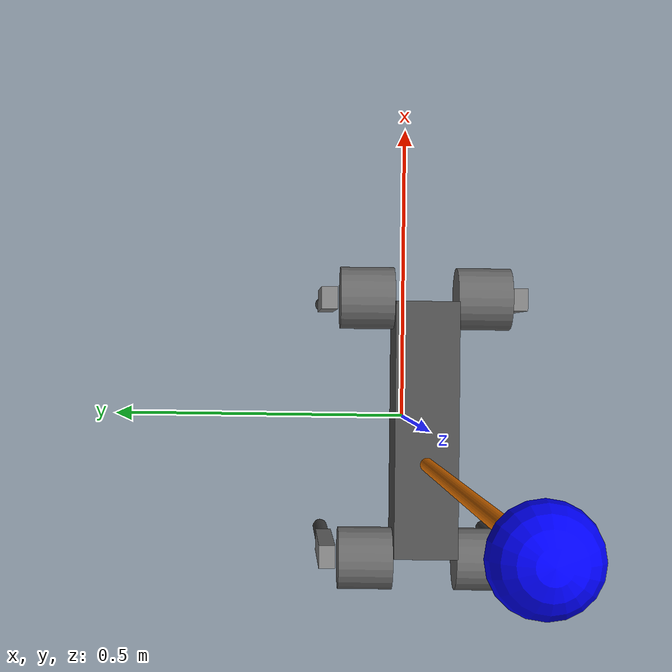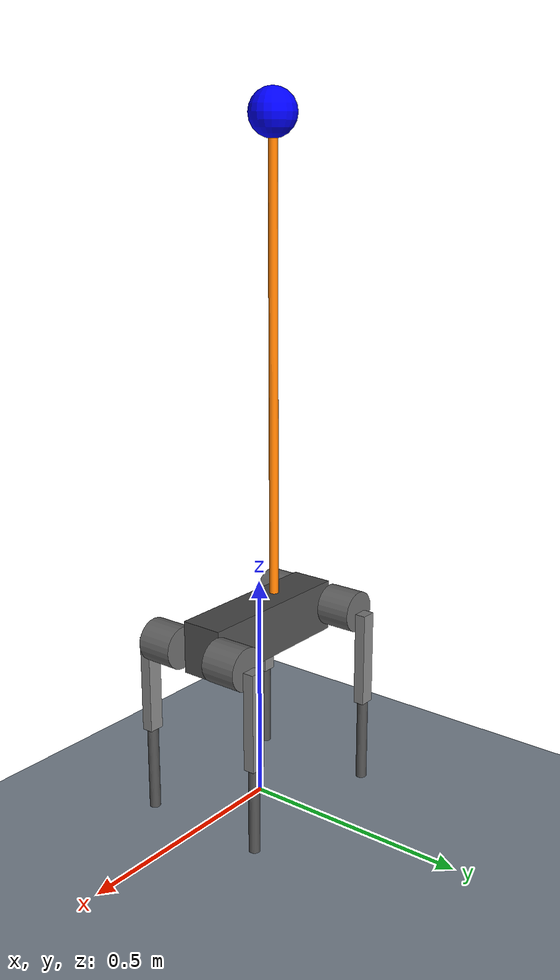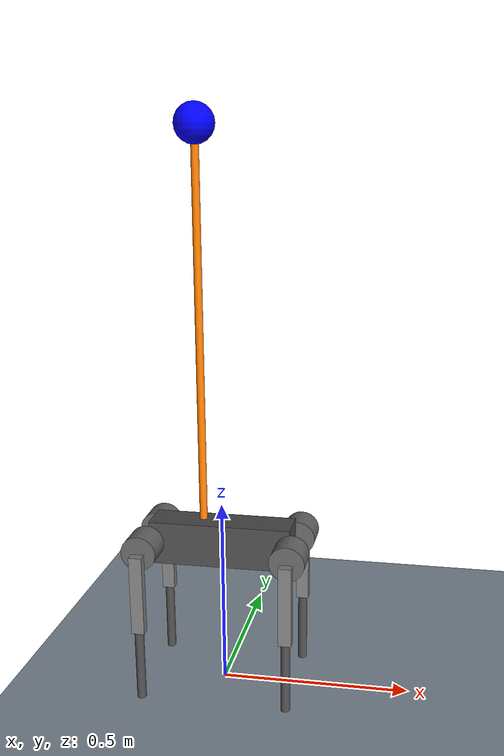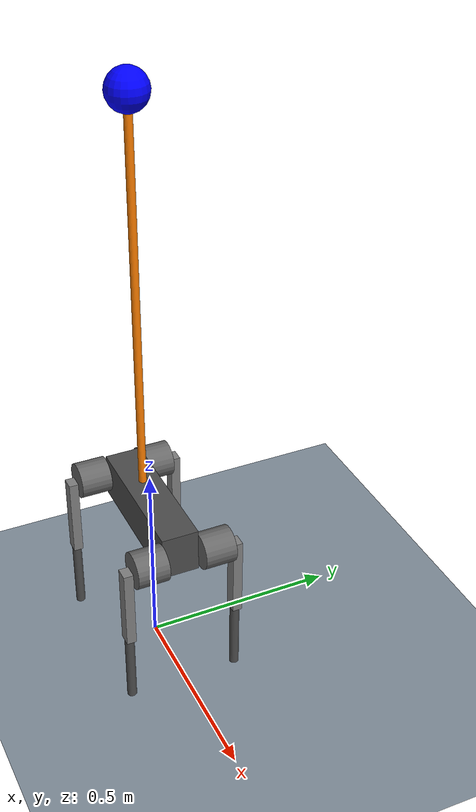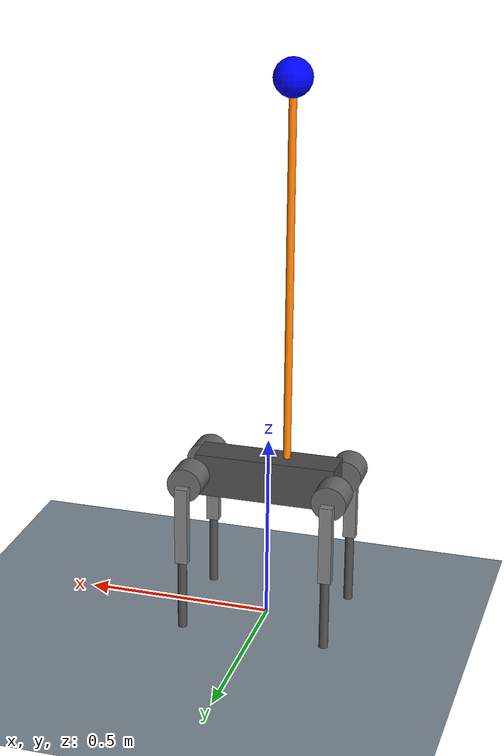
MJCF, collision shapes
<mujoco model="go2_pendulum">
  <compiler angle="radian" autolimits="true" meshdir="meshes"/>

  <option timestep="0.005" iterations="4" solver="Newton" gravity="0 0 -9.81"/>

  <default>
    <geom condim="3" friction="1.0 0.005 0.0001" rgba="0.5 0.5 0.5 1"/>
    <joint damping="0" frictionloss="0"/>
  </default>

  <asset>
    <texture type="2d" name="grid_tex" builtin="checker" width="512" height="512"
             rgb1="0.2 0.3 0.4" rgb2="0.8 0.8 0.8"/>
    <material name="grid_mat" texture="grid_tex" texrepeat="8 8" reflectance="0.2"/>

    <mesh name="base_mesh"         file="base.obj"/>
    <mesh name="hip_mesh"          file="hip.obj"/>
    <mesh name="thigh_mesh"        file="thigh.obj"/>
    <mesh name="thigh_mirror_mesh" file="thigh_mirror.obj"/>
    <mesh name="calf_mesh"         file="calf.obj"/>
    <mesh name="calf_mirror_mesh"  file="calf_mirror.obj"/>
    <mesh name="foot_mesh"         file="foot.obj"/>
  </asset>

  <worldbody>
    <light diffuse="0.8 0.8 0.8" pos="0 0 3" dir="0 0 -1"/>
    <geom name="floor" type="plane" size="50 50 0.1" material="grid_mat"/>

    <body name="base" pos="0 0 0.4">
      <freejoint name="base_freejoint"/>
      <inertial pos="0.021112 0 -0.005366" mass="6.921"
                fullinertia="0.02448 0.098077 0.107 0.00012166 0.0014849 -3.12e-05"/>
      <geom type="box" size="0.1881 0.04675 0.057" contype="1" conaffinity="1" group="1" rgba="0.3 0.3 0.3 1"/>
      <geom type="mesh" mesh="base_mesh" contype="0" conaffinity="0" group="0"/>

      <!-- FL leg -->
      <body name="FL_hip" pos="0.1934 0.0465 0">
        <inertial pos="-0.0054 0.00194 -0.000105" mass="0.678"
                  fullinertia="0.00048 0.000884 0.000596 -3.01e-06 1.11e-06 -1.42e-06"/>
        <joint name="FL_hip_joint" axis="1 0 0" range="-1.0472 1.0472"/>
        <geom type="cylinder" fromto="0 0 0 0 0.08 0" size="0.046" contype="1" conaffinity="1" group="1" rgba="0.4 0.4 0.4 1"/>
        <geom type="mesh" mesh="hip_mesh" contype="0" conaffinity="0" group="0"/>
        <body name="FL_thigh" pos="0 0.0955 0">
          <inertial pos="-0.00374 -0.0223 -0.0327" mass="1.152"
                    fullinertia="0.00584 0.0058 0.00103 8.72e-05 -0.000289 0.000808"/>
          <joint name="FL_thigh_joint" axis="0 1 0" range="-1.5708 3.4907"/>
          <geom type="box" size="0.017 0.01225 0.1065" pos="0 0 -0.1065" contype="1" conaffinity="1" group="1" rgba="0.5 0.5 0.5 1"/>
          <geom type="mesh" mesh="thigh_mesh" contype="0" conaffinity="0" group="0"/>
          <body name="FL_calf" pos="0 0 -0.213">
            <inertial pos="0.00548 -0.000975 -0.115" mass="0.154"
                      fullinertia="0.00108 0.0011 3.29e-05 3.4e-07 1.72e-05 8.28e-06"/>
            <joint name="FL_calf_joint" axis="0 1 0" range="-2.7227 -0.83776"/>
            <geom type="cylinder" fromto="0 0 0 0 0 -0.213" size="0.012" contype="1" conaffinity="1" group="1" rgba="0.3 0.3 0.3 1"/>
            <geom type="mesh" mesh="calf_mesh" contype="0" conaffinity="0" group="0"/>
            <body name="FL_foot" pos="0 0 -0.213">
              <inertial pos="0 0 0" mass="0.04"
                        fullinertia="9.6e-06 9.6e-06 9.6e-06 0 0 0"/>
              <geom type="sphere" size="0.022" contype="1" conaffinity="1" group="1" rgba="0.1 0.1 0.1 1"/>
              <geom type="mesh" mesh="foot_mesh" contype="0" conaffinity="0" group="0"/>
            </body>
          </body>
        </body>
      </body>

      <!-- FR leg -->
      <body name="FR_hip" pos="0.1934 -0.0465 0">
        <inertial pos="-0.0054 -0.00194 -0.000105" mass="0.678"
                  fullinertia="0.00048 0.000884 0.000596 3.01e-06 1.11e-06 1.42e-06"/>
        <joint name="FR_hip_joint" axis="1 0 0" range="-1.0472 1.0472"/>
        <geom type="cylinder" fromto="0 0 0 0 -0.08 0" size="0.046" contype="1" conaffinity="1" group="1" rgba="0.4 0.4 0.4 1"/>
        <geom type="mesh" mesh="hip_mesh" euler="3.1415 0 0" contype="0" conaffinity="0" group="0"/>
        <body name="FR_thigh" pos="0 -0.0955 0">
          <inertial pos="-0.00374 0.0223 -0.0327" mass="1.152"
                    fullinertia="0.00584 0.0058 0.00103 -8.72e-05 -0.000289 -0.000808"/>
          <joint name="FR_thigh_joint" axis="0 1 0" range="-1.5708 3.4907"/>
          <geom type="box" size="0.017 0.01225 0.1065" pos="0 0 -0.1065" contype="1" conaffinity="1" group="1" rgba="0.5 0.5 0.5 1"/>
          <geom type="mesh" mesh="thigh_mirror_mesh" contype="0" conaffinity="0" group="0"/>
          <body name="FR_calf" pos="0 0 -0.213">
            <inertial pos="0.00548 0.000975 -0.115" mass="0.154"
                      fullinertia="0.00108 0.0011 3.29e-05 -3.4e-07 1.72e-05 -8.28e-06"/>
            <joint name="FR_calf_joint" axis="0 1 0" range="-2.7227 -0.83776"/>
            <geom type="cylinder" fromto="0 0 0 0 0 -0.213" size="0.012" contype="1" conaffinity="1" group="1" rgba="0.3 0.3 0.3 1"/>
            <geom type="mesh" mesh="calf_mirror_mesh" contype="0" conaffinity="0" group="0"/>
            <body name="FR_foot" pos="0 0 -0.213">
              <inertial pos="0 0 0" mass="0.04"
                        fullinertia="9.6e-06 9.6e-06 9.6e-06 0 0 0"/>
              <geom type="sphere" size="0.022" contype="1" conaffinity="1" group="1" rgba="0.1 0.1 0.1 1"/>
              <geom type="mesh" mesh="foot_mesh" contype="0" conaffinity="0" group="0"/>
            </body>
          </body>
        </body>
      </body>

      <!-- RL leg -->
      <body name="RL_hip" pos="-0.1934 0.0465 0">
        <inertial pos="0.0054 0.00194 -0.000105" mass="0.678"
                  fullinertia="0.00048 0.000884 0.000596 3.01e-06 -1.11e-06 -1.42e-06"/>
        <joint name="RL_hip_joint" axis="1 0 0" range="-1.0472 1.0472"/>
        <geom type="cylinder" fromto="0 0 0 0 0.08 0" size="0.046" contype="1" conaffinity="1" group="1" rgba="0.4 0.4 0.4 1"/>
        <geom type="mesh" mesh="hip_mesh" euler="0 3.1415 0" contype="0" conaffinity="0" group="0"/>
        <body name="RL_thigh" pos="0 0.0955 0">
          <inertial pos="-0.00374 -0.0223 -0.0327" mass="1.152"
                    fullinertia="0.00584 0.0058 0.00103 8.72e-05 -0.000289 0.000808"/>
          <joint name="RL_thigh_joint" axis="0 1 0" range="-0.5236 4.5379"/>
          <geom type="box" size="0.017 0.01225 0.1065" pos="0 0 -0.1065" contype="1" conaffinity="1" group="1" rgba="0.5 0.5 0.5 1"/>
          <geom type="mesh" mesh="thigh_mesh" contype="0" conaffinity="0" group="0"/>
          <body name="RL_calf" pos="0 0 -0.213">
            <inertial pos="0.00548 -0.000975 -0.115" mass="0.154"
                      fullinertia="0.00108 0.0011 3.29e-05 3.4e-07 1.72e-05 8.28e-06"/>
            <joint name="RL_calf_joint" axis="0 1 0" range="-2.7227 -0.83776"/>
            <geom type="cylinder" fromto="0 0 0 0 0 -0.213" size="0.012" contype="1" conaffinity="1" group="1" rgba="0.3 0.3 0.3 1"/>
            <geom type="mesh" mesh="calf_mesh" contype="0" conaffinity="0" group="0"/>
            <body name="RL_foot" pos="0 0 -0.213">
              <inertial pos="0 0 0" mass="0.04"
                        fullinertia="9.6e-06 9.6e-06 9.6e-06 0 0 0"/>
              <geom type="sphere" size="0.022" contype="1" conaffinity="1" group="1" rgba="0.1 0.1 0.1 1"/>
              <geom type="mesh" mesh="foot_mesh" contype="0" conaffinity="0" group="0"/>
            </body>
          </body>
        </body>
      </body>

      <!-- RR leg -->
      <body name="RR_hip" pos="-0.1934 -0.0465 0">
        <inertial pos="0.0054 -0.00194 -0.000105" mass="0.678"
                  fullinertia="0.00048 0.000884 0.000596 -3.01e-06 -1.11e-06 1.42e-06"/>
        <joint name="RR_hip_joint" axis="1 0 0" range="-1.0472 1.0472"/>
        <geom type="cylinder" fromto="0 0 0 0 -0.08 0" size="0.046" contype="1" conaffinity="1" group="1" rgba="0.4 0.4 0.4 1"/>
        <geom type="mesh" mesh="hip_mesh" euler="3.1415 3.1415 0" contype="0" conaffinity="0" group="0"/>
        <body name="RR_thigh" pos="0 -0.0955 0">
          <inertial pos="-0.00374 0.0223 -0.0327" mass="1.152"
                    fullinertia="0.00584 0.0058 0.00103 -8.72e-05 -0.000289 -0.000808"/>
          <joint name="RR_thigh_joint" axis="0 1 0" range="-0.5236 4.5379"/>
          <geom type="box" size="0.017 0.01225 0.1065" pos="0 0 -0.1065" contype="1" conaffinity="1" group="1" rgba="0.5 0.5 0.5 1"/>
          <geom type="mesh" mesh="thigh_mirror_mesh" contype="0" conaffinity="0" group="0"/>
          <body name="RR_calf" pos="0 0 -0.213">
            <inertial pos="0.00548 0.000975 -0.115" mass="0.154"
                      fullinertia="0.00108 0.0011 3.29e-05 -3.4e-07 1.72e-05 -8.28e-06"/>
            <joint name="RR_calf_joint" axis="0 1 0" range="-2.7227 -0.83776"/>
            <geom type="cylinder" fromto="0 0 0 0 0 -0.213" size="0.012" contype="1" conaffinity="1" group="1" rgba="0.3 0.3 0.3 1"/>
            <geom type="mesh" mesh="calf_mirror_mesh" contype="0" conaffinity="0" group="0"/>
            <body name="RR_foot" pos="0 0 -0.213">
              <inertial pos="0 0 0" mass="0.04"
                        fullinertia="9.6e-06 9.6e-06 9.6e-06 0 0 0"/>
              <geom type="sphere" size="0.022" contype="1" conaffinity="1" group="1" rgba="0.1 0.1 0.1 1"/>
              <geom type="mesh" mesh="foot_mesh" contype="0" conaffinity="0" group="0"/>
            </body>
          </body>
        </body>
      </body>

      <!-- Pendulum -->
      <body name="pendulum_base" pos="-0.05 0 0.06">
        <body name="pendulum_dof1">
          <inertial pos="0 0 0" mass="0.001" diaginertia="1e-06 1e-06 1e-06"/>
          <joint name="pendulum_joint1" axis="1 0 0" range="-1.5708 1.5708"/>
          <body name="pendulum_dof2">
            <joint name="pendulum_joint2" axis="0 1 0" range="-1.5708 1.5708"/>
            <geom name="pendulum_rod" type="cylinder" fromto="0 0 0 0 0 1.0"
                  size="0.01" rgba="1.0 0.5 0.0 1" mass="0.3"/>
            <body name="pendulum_ee" pos="0 0 1.0">
              <geom name="pendulum_ball" type="sphere" size="0.05" rgba="0 0 1 1" mass="0.1"/>
            </body>
          </body>
        </body>
      </body>

    </body>
  </worldbody>

  <actuator>
    <general name="FL_hip_act"   joint="FL_hip_joint"   gainprm="25" biasprm="0 -25 -0.6" biastype="affine" gaintype="fixed" forcerange="-23.5 23.5"/>
    <general name="FL_thigh_act" joint="FL_thigh_joint" gainprm="25" biasprm="0 -25 -0.6" biastype="affine" gaintype="fixed" forcerange="-23.5 23.5"/>
    <general name="FL_calf_act"  joint="FL_calf_joint"  gainprm="25" biasprm="0 -25 -0.6" biastype="affine" gaintype="fixed" forcerange="-23.5 23.5"/>
    <general name="FR_hip_act"   joint="FR_hip_joint"   gainprm="25" biasprm="0 -25 -0.6" biastype="affine" gaintype="fixed" forcerange="-23.5 23.5"/>
    <general name="FR_thigh_act" joint="FR_thigh_joint" gainprm="25" biasprm="0 -25 -0.6" biastype="affine" gaintype="fixed" forcerange="-23.5 23.5"/>
    <general name="FR_calf_act"  joint="FR_calf_joint"  gainprm="25" biasprm="0 -25 -0.6" biastype="affine" gaintype="fixed" forcerange="-23.5 23.5"/>
    <general name="RL_hip_act"   joint="RL_hip_joint"   gainprm="25" biasprm="0 -25 -0.6" biastype="affine" gaintype="fixed" forcerange="-23.5 23.5"/>
    <general name="RL_thigh_act" joint="RL_thigh_joint" gainprm="25" biasprm="0 -25 -0.6" biastype="affine" gaintype="fixed" forcerange="-23.5 23.5"/>
    <general name="RL_calf_act"  joint="RL_calf_joint"  gainprm="25" biasprm="0 -25 -0.6" biastype="affine" gaintype="fixed" forcerange="-23.5 23.5"/>
    <general name="RR_hip_act"   joint="RR_hip_joint"   gainprm="25" biasprm="0 -25 -0.6" biastype="affine" gaintype="fixed" forcerange="-23.5 23.5"/>
    <general name="RR_thigh_act" joint="RR_thigh_joint" gainprm="25" biasprm="0 -25 -0.6" biastype="affine" gaintype="fixed" forcerange="-23.5 23.5"/>
    <general name="RR_calf_act"  joint="RR_calf_joint"  gainprm="25" biasprm="0 -25 -0.6" biastype="affine" gaintype="fixed" forcerange="-23.5 23.5"/>
  </actuator>
</mujoco>
